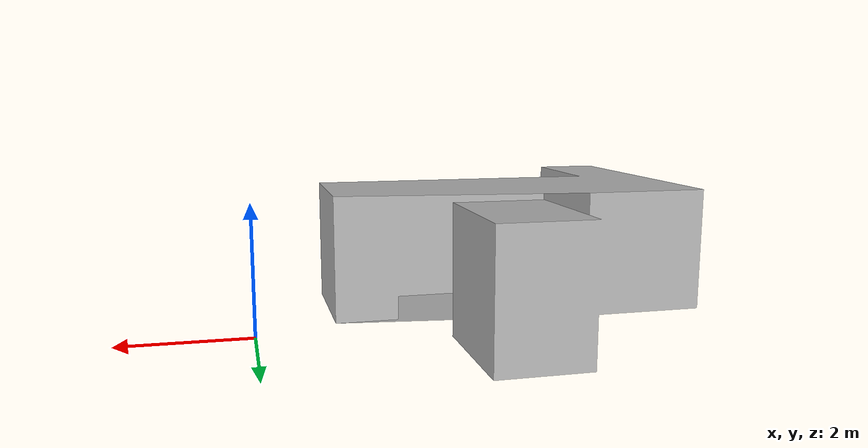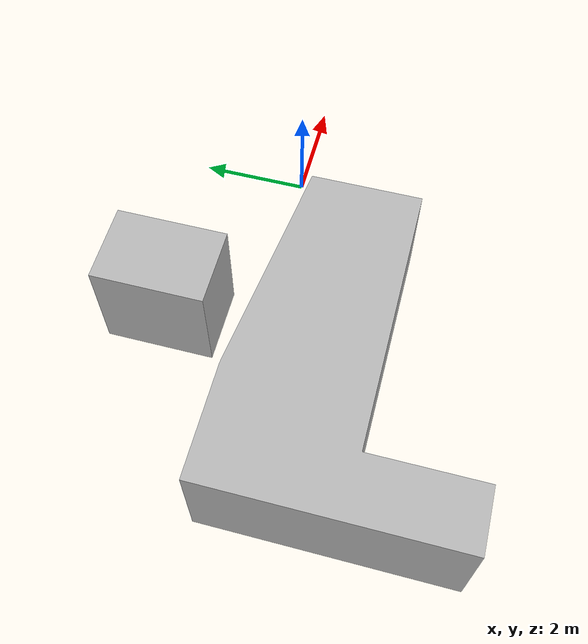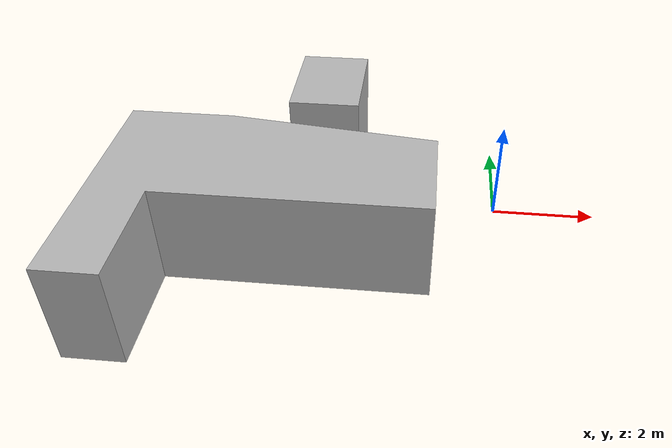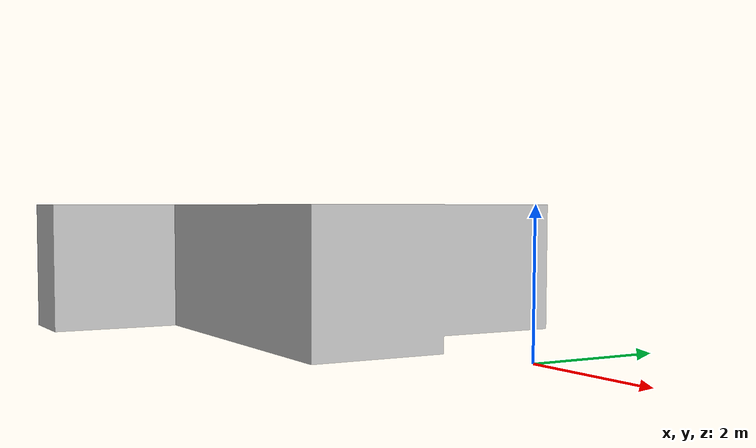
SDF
<?xml version="1.0" ?>
<sdf version="1.6">
  <model name="turtlebot3_openmaze">
    <static>true</static>
    <link name="link">
      <visual name="visual">
        <geometry>
          <mesh>
            <uri>meshes/OpenMaze.obj</uri>
            <scale>2 2 2</scale>
          </mesh>
        </geometry>
      </visual>
      <collision name="collision">
        <geometry>
          <mesh>
            <uri>meshes/OpenMaze.obj</uri>
            <scale>2 2 2</scale>
          </mesh>
        </geometry>
      </collision>
    </link>
  </model>
</sdf>
